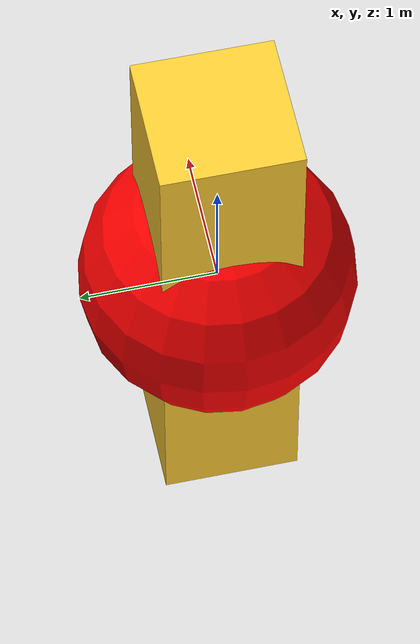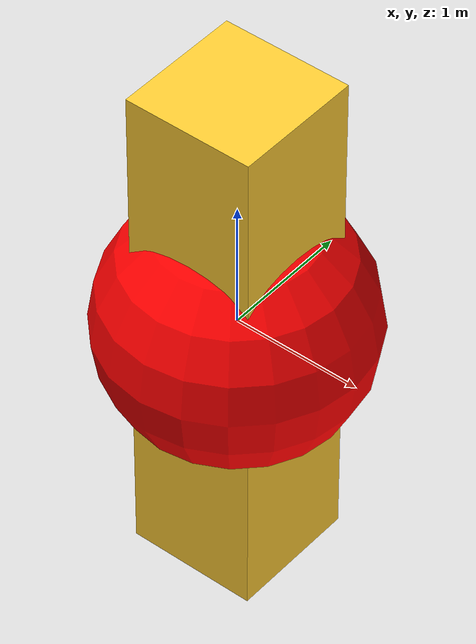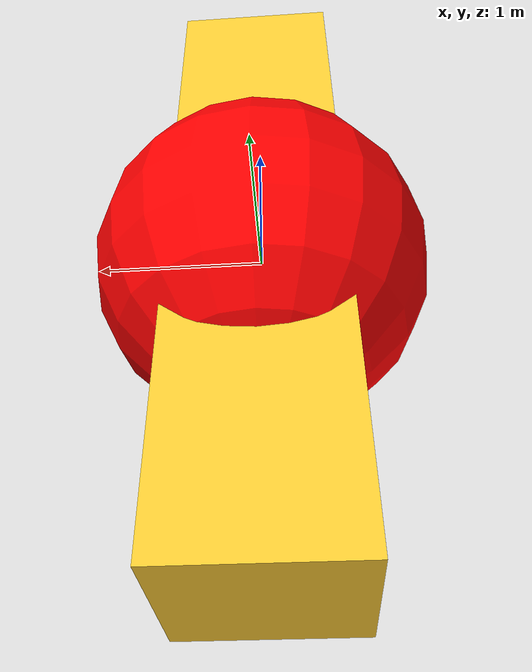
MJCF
<mujoco>
  <option gravity="0 0 0" />
  <worldbody>
    <body name="object_1" pos="0 0 0">
      <geom type="box" size="0.5 0.5 2" density="1" rgba="1 0.8 0.2 1" />
      <joint name="object_1_joint" type="free" />
    </body>
  <body name="fuel_1" pos="0.0 0.0 0.0"><geom type="sphere" size="1.0" rgba="1.0 0.0 0.0 1.0" /></body><body name="fuel_2" pos="0.0 0.0 0.0"><geom type="sphere" size="1.0" rgba="1.0 0.0 0.0 1.0" /></body></worldbody>
</mujoco>
